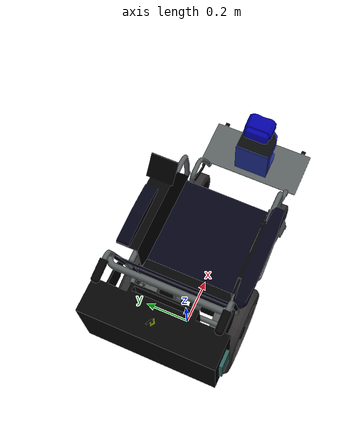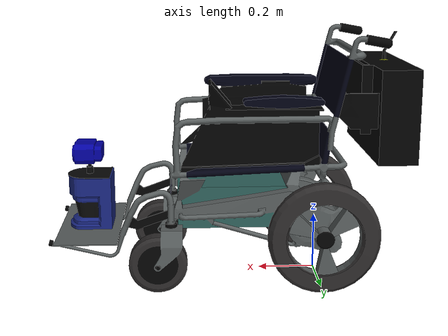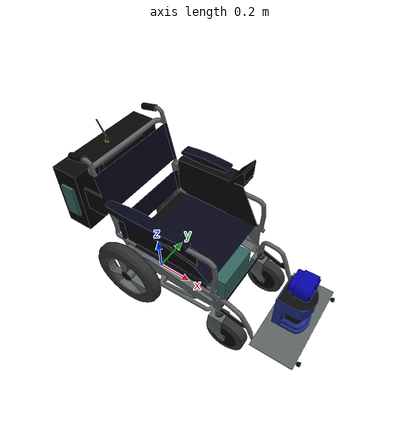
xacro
<?xml version="1.0"?>
<robot xmlns:xacro="http://ros.org/wiki/xacro" name="risewheelchair">
<xacro:include filename="$(find riserobotdb)/defs/robots/risewheelchair/risewheelchair.common.urdf.xacro" />
<xacro:include filename="$(find riserobotdb)/defs/sensors/PTUD46MobileRanger/mobileranger_fixed.urdf.xacro" />
	<!-- Chassis -->
	<xacro:urdf_link _name="base_link" _xyz="${wheelchair_xyz}" _rpy="${wheelchair_rpy}" _mesh="${wheelchair_base_mesh}"
		_mass="${wheelchair_mass}" _cg="${wheelchair_cg}" _ixx="${wheelchair_ixx}" _iyy="${wheelchair_iyy}"
		_izz="${wheelchair_izz}" _ixy="${wheelchair_ixy}" _ixz="${wheelchair_ixz}" _iyz="${wheelchair_iyz}" />
	<!-- Caster Wheels -->
	<xacro:caster_wheel suffix="left" geom_rpy="${caster_left_rpy}" joint_xyz="${caster_left_joint_xyz}" />
	<xacro:caster_wheel suffix="right" geom_rpy="${caster_right_rpy}" joint_xyz="${caster_right_joint_xyz}" />
	<!-- Rear Wheels -->
	<xacro:rear_wheel suffix="left" geom_rpy="${wheel_left_rpy}" joint_xyz="${wheel_left_joint_xyz}" />
	<xacro:rear_wheel suffix="right" geom_rpy="${wheel_right_rpy}" joint_xyz="${wheel_right_joint_xyz}" />
	<!-- SickLMS 200 -->
	<xacro:sicklms200_laser nameid="0" parent="base_link">
		<origin xyz="${wheelchair_sicklms_xyz}" rpy="0 0 0" />
	</xacro:sicklms200_laser>
	<!-- Mobile Ranger Stereo Camera -->
	<xacro:mobileranger_fixed _baselink="base_link" _basexyz="0.81 0.0 0.368" _baserpy="0 0 0" />
</robot>

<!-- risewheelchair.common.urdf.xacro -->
<robot xmlns:xacro="http://ros.org/wiki/xacro">
<xacro:include filename="$(find riserobotdb)/defs/common/common.urdf.xacro" />
<xacro:include filename="$(find riserobotdb)/defs/sensors/LaserScanners/sicklms200.urdf.xacro" />
<xacro:include filename="$(find riserobotdb)/defs/robots/risewheelchair/risewheelchair.common.xacro" />
<!-- Rear Wheels of Wheelchair -->
<xacro:macro name="rear_wheel" params="suffix geom_rpy joint_xyz">
	<xacro:urdf_link _name="${suffix}_rear_wheel_link" _xyz="0 0 0" _rpy="${geom_rpy}" _mesh="${wheelchair_wheel_mesh}"
		_mass="${wheel_mass}" _cg="${wheel_cg}" _ixx="${wheel_ixx}" _iyy="${wheel_iyy}"
		_izz="${wheel_izz}" _ixy="${wheel_ixy}" _ixz="${wheel_ixz}" _iyz="${wheel_iyz}" />
	<xacro:urdf_wheel_joint _name="${suffix}_rear_wheel_joint" _parent="base_link" _child="${suffix}_rear_wheel_link"
		_axis="${wheel_axis}" _xyz="${joint_xyz}" _rpy="0 0 0" _effort="${joint_effort}" _velocity="${joint_velocity}"/>
</xacro:macro>
<!-- Caster Wheels of Wheelchair -->
<xacro:macro name="caster_wheel" params="suffix geom_rpy joint_xyz">
	<xacro:urdf_link _name="${suffix}_caster_wheel_link" _xyz="0 0 0" _rpy="${geom_rpy}" _mesh="${wheelchair_caster_mesh}"
		_mass="${caster_mass}" _cg="${caster_cg}" _ixx="${caster_ixx}" _iyy="${caster_iyy}"
		_izz="${caster_izz}" _ixy="${caster_ixy}" _ixz="${caster_ixz}" _iyz="${caster_iyz}" />
	<xacro:urdf_wheel_joint _name="${suffix}_caster_wheel_joint" _parent="base_link" _child="${suffix}_caster_wheel_link"
		_axis="${caster_axis}" _xyz="${joint_xyz}" _rpy="0 0 0" _effort="${joint_effort}" _velocity="${joint_velocity}"/>
</xacro:macro>
</robot>

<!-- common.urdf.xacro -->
<robot xmlns:xacro="http://ros.org/wiki/xacro">
<!-- Macro to load mesh -->
<xacro:macro name="urdf_mesh" params="_filename">
	<geometry>
		<mesh filename="package://riserobotdb/${_filename}" />
	</geometry>
</xacro:macro>
<!-- Macro to load inertial information -->
<xacro:macro name="urdf_inertial" params="_mass _cg _ixx _iyy _izz _ixy _ixz _iyz">
	<inertial>
		<mass value="${_mass}"/>
		<origin xyz="${_cg}"/>
		<inertia ixx="${_ixx}" ixy="${_ixy}" ixz="${_ixz}"
				 iyy="${_iyy}" iyz="${_iyz}"
				 izz="${_izz}"/>
	</inertial>
</xacro:macro>
<!-- Macro of null link in urdf -->
<xacro:macro name="urdf_link_null" params="_name">
	<link name="${_name}">
		<xacro:urdf_inertial _mass="0.01" _cg="0 0 0" _ixx="1" _iyy="1" _izz="1" _ixy="0" _ixz="0" _iyz="0" />
		<visual>
			<origin xyz="0 0 0" rpy="0 0 0" />
			<geometry><box size="0 0 0" /></geometry>
		</visual>
		<collision>
			<origin xyz="0 0 0" rpy="0 0 0" />
			<geometry><box size="0 0 0" /></geometry>
		</collision>
	</link>
</xacro:macro>
<!-- Macro of a link in urdf -->
<xacro:macro name="urdf_link" params="_name _xyz _rpy _mesh _mass _cg _ixx _iyy _izz _ixy _ixz _iyz">
	<link name="${_name}">
		<xacro:urdf_inertial _mass="${_mass}" _cg="${_cg}" _ixx="${_ixx}"
			_iyy="${_iyy}" _izz="${_izz}" _ixy="${_ixy}" _ixz="${_ixz}" _iyz="${_iyz}" />
		<visual>
			<origin xyz="${_xyz}" rpy="${_rpy}" />
			<xacro:urdf_mesh _filename="${_mesh}" />
		</visual>
		<collision>
			<origin xyz="${_xyz}" rpy="${_rpy}" />
			<xacro:urdf_mesh _filename="${_mesh}" />
		</collision>
	</link>
</xacro:macro>
<xacro:macro name="urdf_link_color" params="_name _xyz _rpy _mesh _mass _cg _ixx _iyy _izz _ixy _ixz _iyz _colorname _rgba">
	<link name="${_name}">
		<xacro:urdf_inertial _mass="${_mass}" _cg="${_cg}" _ixx="${_ixx}"
			_iyy="${_iyy}" _izz="${_izz}" _ixy="${_ixy}" _ixz="${_ixz}" _iyz="${_iyz}" />
		<visual>
			<origin xyz="${_xyz}" rpy="${_rpy}" />
			<xacro:urdf_mesh _filename="${_mesh}" />
			<material name="${_colorname}">
				<color rgba="${_rgba}"/>
			</material>
		</visual>
		<collision>
			<origin xyz="${_xyz}" rpy="${_rpy}" />
			<xacro:urdf_mesh _filename="${_mesh}" />
		</collision>
	</link>
</xacro:macro>
<!-- Macro of a fixed joint in urdf -->
<xacro:macro name="urdf_fixed_joint" params="_name _parent _child _xyz _rpy">
	<joint name="${_name}" type="fixed">
		<origin xyz="${_xyz}" rpy="${_rpy}"/>
		<parent link="${_parent}" />
		<child link="${_child}" />
	</joint>
</xacro:macro>
<!-- Macro of a revolute joint in urdf -->
<xacro:macro name="urdf_revolute_joint" params="_name _parent _child _axis _xyz _rpy _lower _upper _effort _velocity" >
	<joint name="${_name}" type="revolute">
		<origin xyz="${_xyz}" rpy="${_rpy}"/>
		<parent link="${_parent}" />
		<child link="${_child}" />
		<axis xyz="${_axis}"/>
		<limit lower="${_lower}" upper="${_upper}" effort="${_effort}" velocity="${_velocity}" />
	</joint>
</xacro:macro>
<!-- Macro of a pan tilt joint in urdf -->
<xacro:macro name="urdf_pantilt_joints" params="_name _parent _child1 _child2 _xyz _rpy _lower1 _lower2 _upper1 _upper2 _effort _velocity">
	<xacro:urdf_revolute_joint _name="${_name}_pan_joint" _parent="${_parent}" _child="${_child1}" _axis="0 0 1" _xyz="${_xyz}" _rpy="${_rpy}" _lower="${_lower1}" _upper="${_upper1}" _effort="${_effort}" _velocity="${_velocity}" />
	<xacro:urdf_revolute_joint _name="${_name}_tilt_joint" _parent="${_child1}" _child="${_child2}" _axis="0 1 0" _xyz="0 0 0" _rpy="0 0 0" _lower="${_lower2}" _upper="${_upper2}" _effort="${_effort}" _velocity="${_velocity}"/>
</xacro:macro>
<!-- Macro of a wheel joint in urdf -->
<xacro:macro name="urdf_wheel_joint" params="_name _parent _child _axis _xyz _rpy _effort _velocity" >
	<joint name="${_name}" type="continuous">
		<origin xyz="${_xyz}" rpy="${_rpy}"/>
		<parent link="${_parent}" />
		<child link="${_child}" />
		<axis xyz="${_axis}"/>
		<limit effort="${_effort}" velocity="${_velocity}" />
	</joint>
</xacro:macro>
<!-- Macro of transmission joint controllers -->
<xacro:macro name="urdf_transmission" params="joint id">
	<transmission name="tran${id}">
		<type>transmission_interface/SimpleTransmission</type>
		<joint name="${joint}">
			<hardwareInterface>EffortJointInterface</hardwareInterface>
		</joint>
		<actuator name="motor${id}">
			<hardwareInterface>EffortJointInterface</hardwareInterface>
			<mechanicalReduction>1</mechanicalReduction>
		</actuator>
	</transmission>
</xacro:macro>
</robot>

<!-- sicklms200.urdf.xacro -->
<robot xmlns:xacro="http://www.ros.org/wiki/xacro" name="sicklms200">
<xacro:include filename="$(find riserobotdb)/defs/common/common.urdf.xacro" />

<xacro:property name="sicklms200_sensor_xyz" value="0 0 0.063" />
<xacro:property name="sicklms200_sensor_rpy" value="0 0 0" />
<xacro:property name="sicklms200_laser_mesh" value="models/sensors/LaserScanners/sicklms200.dae" />

<xacro:macro name="sicklms200_laser" params="nameid parent *origin" >
    <!-- Parent Joint -->
	<joint name="sicklms200_laser_mount" type="fixed">
		<parent link="${parent}" />
		<child link="sicklms200_link_${nameid}" />
		<xacro:insert_block name="origin"/>
	</joint>
	<!-- LRF Link -->
	<xacro:urdf_link _name="sicklms200_link_${nameid}" _xyz="0 0 0.0925" _rpy="0 0 1.5708"
	    _mesh="${sicklms200_laser_mesh}" _mass="4.5" _cg="0 0 0"
	    _ixx="1.0" _iyy="1.0" _izz="1.0" _ixy="0" _ixz="0" _iyz="0" />
	<!-- Dummy link and joint for proper placement of sensor -->
	<xacro:urdf_link_null _name="sicklms200_sensor_${nameid}" />
	<!-- Joint Linking Sensor -->
	<xacro:urdf_fixed_joint _name="sicklms200_laser_sensor_${nameid}" _parent="sicklms200_link_${nameid}"
	        _child="sicklms200_sensor_${nameid}" _xyz="${sicklms200_sensor_xyz}" _rpy="${sicklms200_sensor_rpy}" />
</xacro:macro>

</robot>

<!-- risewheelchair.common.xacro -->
<robot xmlns:xacro="http://ros.org/wiki/xacro">
<xacro:property name="wheelchair_base_mesh" value="models/robots/risewheelchair/Wheelchair_Structure.dae" />
<xacro:property name="wheelchair_caster_mesh" value="models/robots/risewheelchair/Wheelchair_Caster.dae" />
<xacro:property name="wheelchair_wheel_mesh" value="models/robots/risewheelchair/Wheelchair_Wheel.dae" />
<xacro:property name="bender_body_mesh" value="models/robots/risewheelchair/Bender_Body.dae" />
<xacro:property name="bender_head_mesh" value="models/robots/risewheelchair/Bender_Head.dae" />
<!-- Wheel Chair Data -->
<xacro:property name="wheelchair_z" value="0.1925" />
<xacro:property name="wheelchair_xyz" value="0 0 ${wheelchair_z}" />
<xacro:property name="wheelchair_rpy" value="0 0 0" />
<xacro:property name="wheelchair_cg" value="0.2 0 0.2" />
<xacro:property name="bender_x" value="0.106" />
<xacro:property name="bender_y" value="0" />
<xacro:property name="bender_z" value="${wheelchair_z + 0.508}" />
<xacro:property name="bender_rpy" value="0 0 0" />
<xacro:property name="bender_cg" value="0 0 0" />
<xacro:property name="bender_head_x" value="0.04" />
<xacro:property name="bender_head_y" value="0" />
<xacro:property name="bender_head_z" value="0.25" />
<xacro:property name="bender_head_rpy" value="0 0 0" />
<xacro:property name="bender_head_cg" value="0 0 0.2" />
<xacro:property name="bender_head_xyz" value="${bender_head_x} ${bender_head_y} ${bender_head_z}" />
<xacro:property name="bender_xyz" value="${bender_x} ${bender_y} ${bender_z}" />
<xacro:property name="bender_head_gaz_xyz" value="${bender_x + bender_head_x} ${bender_y + bender_head_y} ${bender_z + bender_head_z}" />
<!-- Wheel Data -->
<xacro:property name="wheel_left_joint_xyz" value="0 0.2374 ${wheelchair_z}"/>
<xacro:property name="wheel_right_joint_xyz" value="0 -0.2374 ${wheelchair_z}"/>
<xacro:property name="wheel_left_rpy" value="-1.57 0 0" />
<xacro:property name="wheel_right_rpy" value="1.57 0 0" />
<xacro:property name="wheel_cg" value="0 0 0"/>
<xacro:property name="wheel_axis" value="0 1 0" />
<!-- Caster Wheel Data -->
<xacro:property name="caster_left_joint_xyz" value="0.5203 0.2006 ${wheelchair_z + 0.0376}"/>
<xacro:property name="caster_right_joint_xyz" value="0.5203 -0.2006 ${wheelchair_z + 0.0376}"/>
<xacro:property name="caster_left_rpy" value="0 0 0" />
<xacro:property name="caster_right_rpy" value="0 0 0" />
<xacro:property name="caster_cg" value="0.045 0 -0.13"/>
<xacro:property name="caster_axis" value="0 0 1" />
<!-- Mass and Inertias -->
<xacro:property name="wheelchair_mass" value="80.0" />
<xacro:property name="wheelchair_sicklms_mass" value="4.5" />
<xacro:property name="bender_mass" value="70" />
<xacro:property name="bender_head_mass" value="7" />
<xacro:property name="wheel_mass" value="1.5" />
<xacro:property name="caster_mass" value="2.0" />
<xacro:property name="wheelchair_ixx" value="${wheelchair_mass * 0.06}" />
<xacro:property name="wheelchair_iyy" value="${wheelchair_mass * 0.0833}" />
<xacro:property name="wheelchair_izz" value="${wheelchair_mass * 0.0833}" />
<xacro:property name="wheelchair_ixy" value="0" />
<xacro:property name="wheelchair_ixz" value="0" />
<xacro:property name="wheelchair_iyz" value="0" />
<xacro:property name="wheel_ixx" value="${wheel_mass * 0.0577}" />
<xacro:property name="wheel_iyy" value="${wheel_mass * 0.0577}" />
<xacro:property name="wheel_izz" value="${wheel_mass * 0.01883}" />
<xacro:property name="wheel_ixy" value="0" />
<xacro:property name="wheel_ixz" value="0" />
<xacro:property name="wheel_iyz" value="0" />
<xacro:property name="caster_ixx" value="${caster_mass * 0.0039}" />
<xacro:property name="caster_iyy" value="${caster_mass * 0.0033}" />
<xacro:property name="caster_izz" value="${caster_mass * 0.0039}" />
<xacro:property name="caster_ixy" value="0" />
<xacro:property name="caster_ixz" value="0" />
<xacro:property name="caster_iyz" value="0" />
<!-- Others -->
<xacro:property name="joint_effort" value="100" />
<xacro:property name="joint_velocity" value="50" />
<xacro:property name="pan_lower" value="-1.22173" />
<xacro:property name="pan_upper" value="1.22173" />
<xacro:property name="tilt_lower" value="-1.308997" />
<xacro:property name="tilt_upper" value="0.95993" />
<!-- Wheels ODE Params -->
<xacro:property name="wheel_kp" value="1e+06" />
<xacro:property name="wheel_kd" value="100" />
<xacro:property name="wheel_mu" value="0.3" />
<xacro:property name="wheel_mu2" value="0.5" />
<xacro:property name="wheel_slip1" value="0.5" />
<xacro:property name="wheel_slip2" value="0.2" />
<xacro:property name="wheel_fdir1" value="1 0 0" />
<xacro:property name="caster_kp" value="1e+06" />
<xacro:property name="caster_kd" value="100" />
<xacro:property name="caster_mu" value="0.2" />
<xacro:property name="caster_mu2" value="0.3" />
<xacro:property name="caster_slip1" value="0.7" />
<xacro:property name="caster_slip2" value="0.4" />
<xacro:property name="caster_fdir1" value="1 0 0" />
<!-- Sick LMS 200 Data -->
<xacro:property name="wheelchair_sicklms_x" value="0.8081" />
<xacro:property name="wheelchair_sicklms_y" value="0" />
<xacro:property name="wheelchair_sicklms_z" value="${wheelchair_z -0.01}" />
<xacro:property name="wheelchair_sicklms_z_visual_offset" value="0.0925" />
<xacro:property name="wheelchair_sicklms_sensor_z_offset" value="0.063" />
<xacro:property name="wheelchair_sicklms_xyz" value="${wheelchair_sicklms_x} ${wheelchair_sicklms_y} ${wheelchair_sicklms_z}" />
<xacro:property name="wheelchair_sicklms_frame" value="${wheelchair_sicklms_x} ${wheelchair_sicklms_y} ${wheelchair_sicklms_z_visual_offset -0.01} 0 -0 1.5708" />
<xacro:property name="wheelchair_sicklms_sensor" value="${wheelchair_sicklms_x} ${wheelchair_sicklms_y} ${wheelchair_sicklms_sensor_z_offset -0.01} 0 0 0" />
<!-- Camera in Simulation -->
<xacro:property name="bender_eyes_xyz" value="0 0 0.1673" />
<xacro:property name="bender_eyes_width" value="640" />
<xacro:property name="bender_eyes_height" value="480" />
<xacro:property name="bender_eyes_fov" value="1.22" />
<!-- SDF Specific -->
<xacro:property name="max_contacts" value="6" />
<xacro:property name="drive_update_rate" value="30" />
<xacro:property name="drive_torque" value="50" />
<xacro:property name="drive_wheel_dia" value="0.385" />
<xacro:property name="drive_wheel_seperation" value="0.535" />
<xacro:property name="drive_acceleration" value="2.0" />
</robot>

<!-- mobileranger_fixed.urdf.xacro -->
<robot xmlns:xacro="http://ros.org/wiki/xacro" name="mobileranger_fixed">

<xacro:include filename="$(find riserobotdb)/defs/common/common.urdf.xacro" />
<xacro:include filename="$(find riserobotdb)/defs/sensors/PTUD46MobileRanger/mobileranger_fixed.common.xacro" />
<!-- Definition -->
<xacro:macro name="mobileranger_fixed" params="_baselink _basexyz _baserpy" >
	<!-- Ptud46 mount base Link -->
	<xacro:urdf_link _name="${mobileranger_link}" _xyz="0 0 0" _rpy="0 0 0" _mesh="${mobileranger_mesh}"
		_mass="${mobileranger_mass}" _cg="${mobileranger_cg}" _ixx="${mobileranger_ixx}" _iyy="${mobileranger_iyy}"
		_izz="${mobileranger_izz}" _ixy="${mobileranger_ixy}" _ixz="${mobileranger_ixz}" _iyz="${mobileranger_iyz}" />
	<xacro:urdf_link_null _name="${mobileranger_camleft_link}" />
	<xacro:urdf_link_null _name="${mobileranger_camright_link}" />
	<!-- Now Joints -->
	<xacro:urdf_fixed_joint _name="${mobileranger_joint}" _parent="${_baselink}"
	 _child="${mobileranger_link}" _xyz="${_basexyz}" _rpy="${_baserpy}" />
	<xacro:urdf_fixed_joint _name="${mobileranger_camleft_joint}" _parent="${mobileranger_link}"
	 _child="${mobileranger_camleft_link}" _xyz="${mobileranger_camleft_xyz}" _rpy="0 0 0" />
	<xacro:urdf_fixed_joint _name="$mobileranger_camright_joint}" _parent="${mobileranger_link}"
	 _child="${mobileranger_camright_link}" _xyz="${mobileranger_camright_xyz}" _rpy="0 0 0" />
</xacro:macro>
</robot>

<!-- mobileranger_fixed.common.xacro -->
<robot xmlns:xacro="http://ros.org/wiki/xacro">
<xacro:property name="mobileranger_mesh" value="models/sensors/PTUD46MobileRanger/mobileranger_fixed.dae" />
<!-- Some Names of Links and Joints -->
<xacro:property name="mobileranger_link" value="mobileranger_link" />
<xacro:property name="mobileranger_camleft_link" value="mobileranger_camleft_link" />
<xacro:property name="mobileranger_camright_link" value="mobileranger_camright_link" />
<xacro:property name="mobileranger_joint" value="mobileranger_joint" />
<xacro:property name="mobileranger_camleft_joint" value="mobileranger_camleft_joint" />
<xacro:property name="mobileranger_camright_joint" value="mobileranger_camright_joint" />
<!-- Mass and Inertias -->
<xacro:property name="mobileranger_cg" value="0 0 0" />
<xacro:property name="mobileranger_mass" value="3.0" />
<xacro:property name="mobileranger_ixx" value="1" />
<xacro:property name="mobileranger_iyy" value="1" />
<xacro:property name="mobileranger_izz" value="1" />
<xacro:property name="mobileranger_ixy" value="0" />
<xacro:property name="mobileranger_ixz" value="0" />
<xacro:property name="mobileranger_iyz" value="0" />
<!-- Camera Properties -->
<xacro:property name="mobileranger_name" value="mobileranger" />
<xacro:property name="mobileranger_image_width" value="752" />
<xacro:property name="mobileranger_image_height" value="480" />
<xacro:property name="mobileranger_fov" value="1.309" />
<xacro:property name="mobileranger_clip_near" value="0.2" />
<xacro:property name="mobileranger_clip_far" value="60" />
<xacro:property name="mobileranger_updaterate" value="10" />
<xacro:property name="mobileranger_baseline" value="0.058" />
<xacro:property name="mobileranger_fx" value="490.011187" />
<xacro:property name="mobileranger_cx" value="423.62" />
<xacro:property name="mobileranger_cy" value="236.67" />
<!-- Some other macros -->
<xacro:property name="mobileranger_camleft_xyz" value="0 0.02921 0.079049" />
<xacro:property name="mobileranger_camright_xyz" value="0 -0.02921 0.079049" />
</robot>
